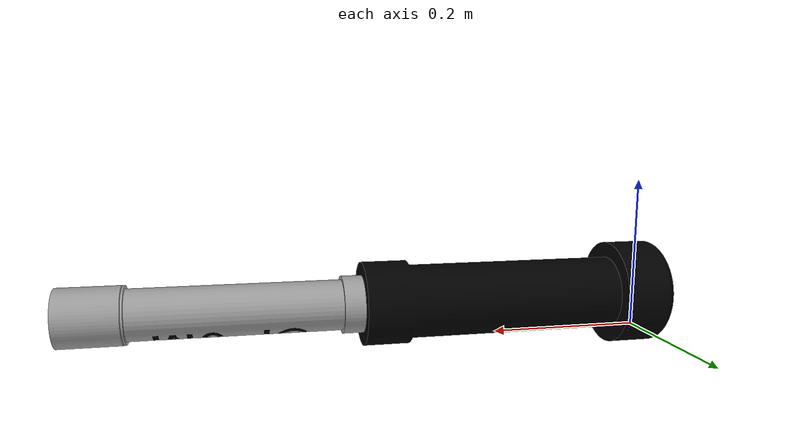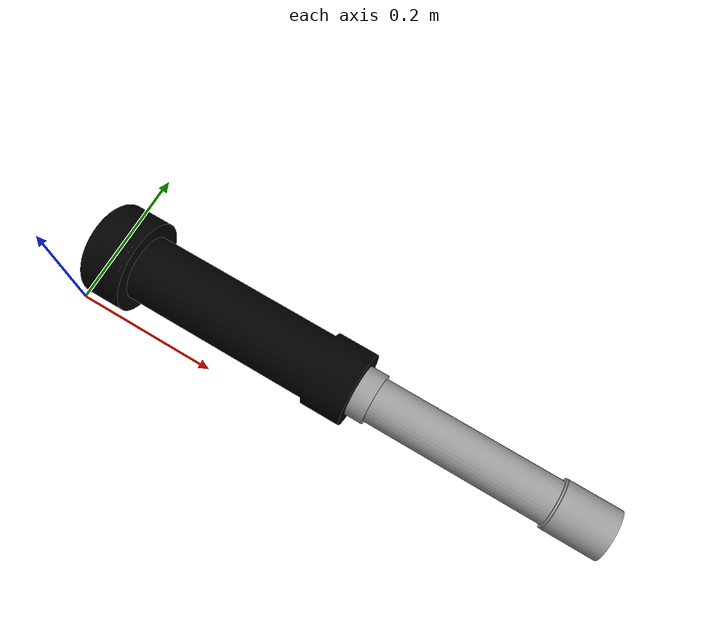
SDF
<?xml version="1.0"?>
<sdf version="1.5">
  <model name="cannon">
    <static>true</static>
    <link name="link">
      <collision name="dam_collision">
        <geometry>
          <mesh>
            <uri>model://MATE_props_2019/cannon/meshes/cannon.dae</uri>
          </mesh>
        </geometry>
      </collision>
      <visual name="visual">
        <cast_shadows>true</cast_shadows>
        <geometry>
          <mesh>
            <uri>model://MATE_props_2019/cannon/meshes/cannon.dae</uri>
          </mesh>
        </geometry>
      </visual>
    </link>
  </model>
</sdf>
